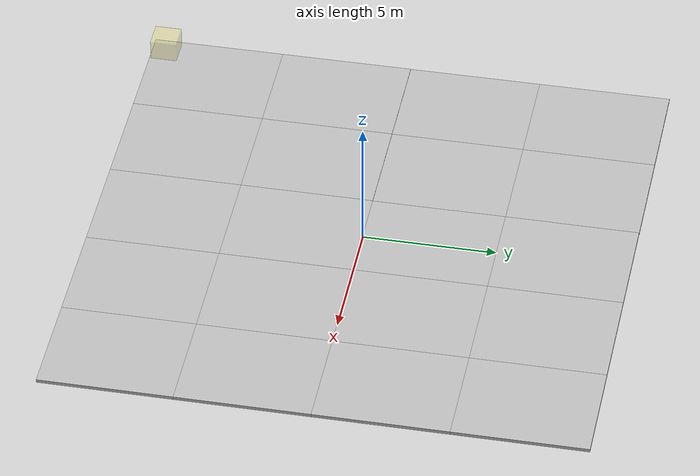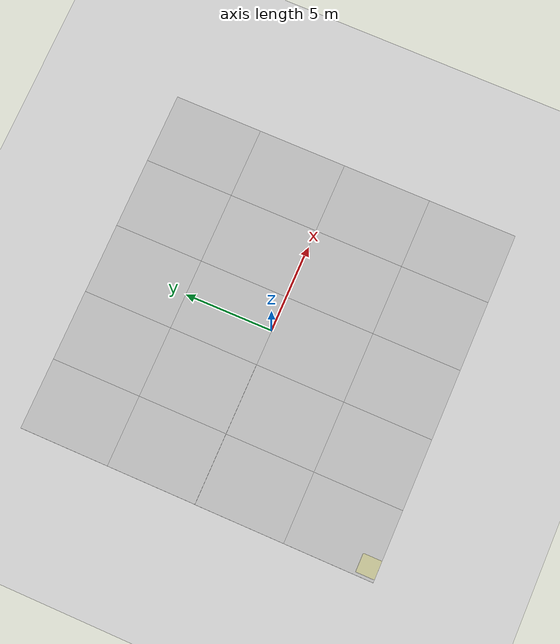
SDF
<sdf version="1.6">
 <world name="default">
  <physics name="default_physics" default="0" type="ode">
   <ode>
    <solver>
     <type>quick</type>
     <iters>100</iters>
     <sor>1</sor>
     <use_dynamic_moi_rescaling>0</use_dynamic_moi_rescaling>
    </solver>
    <constraints>
     <cfm>0</cfm>
     <erp>0.2</erp>
     <contact_max_correcting_vel>0.1</contact_max_correcting_vel>
     <contact_surface_layer>0</contact_surface_layer>
    </constraints>
   </ode>
   <real_time_update_rate>-1</real_time_update_rate>
   <max_step_size>0.001</max_step_size>
   <real_time_factor>1</real_time_factor>
  </physics>
  <gravity>0 0 -9.8</gravity>
  <light name="sun" type="directional">
   <pose>0 0 10 0 -0 0</pose>
   <diffuse>0.8 0.8 0.8 1</diffuse>
   <specular>0.2 0.2 0.2 1</specular>
   <attenuation>
    <range>1000</range>
    <constant>0.9</constant>
    <linear>0.01</linear>
    <quadratic>0.001</quadratic>
   </attenuation>
   <direction>-0.5 0.1 -0.9</direction>
  </light>
  <model name="ground_plane">
   <static>1</static>
   <link name="link">
    <collision name="collision">
     <geometry><plane><normal>0 0 1</normal><size>5000 5000</size></plane></geometry>
     <surface><friction><ode><mu>100</mu><mu2>50</mu2></ode></friction></surface>
    </collision>
    <visual name="runway">
     <pose>0 0 0.005 0 -0 0</pose>
     <cast_shadows>0</cast_shadows>
     <geometry><plane><normal>0 0 1</normal><size>1829 45</size></plane></geometry>
     <material>
      <script><uri>file://media/materials/scripts/gazebo.material</uri><name>Gazebo/Runway</name></script>
     </material>
    </visual>
    <visual name="grass">
     <pose>0 0 -0.1 0 -0 0</pose>
     <cast_shadows>0</cast_shadows>
     <geometry><plane><normal>0 0 1</normal><size>5000 5000</size></plane></geometry>
     <material>
      <script><uri>file://media/materials/scripts/gazebo.material</uri><name>Gazebo/Grass</name></script>
     </material>
    </visual>
   </link>
  </model>
  <magnetic_field>6e-06 2.3e-05 -4.2e-05</magnetic_field>
  <atmosphere type="adiabatic"/>
  <scene><ambient>0.4 0.4 0.4 1</ambient><background>0.7 0.7 0.7 1</background><shadows>1</shadows></scene>
  <audio><device>default</device></audio>
  <spherical_coordinates>
   <surface_model>EARTH_WGS84</surface_model>
   <latitude_deg>0</latitude_deg>
   <longitude_deg>0</longitude_deg>
   <elevation>0</elevation>
   <heading_deg>0</heading_deg>
  </spherical_coordinates>
  <model name="mud_box">
   <static>1</static>
   <link name="link">
    <collision name="collision"><geometry><box><size>8 10 0.2</size></box></geometry></collision>
    <visual name="visual_1">
     <pose>-2 2.5 0 0 -0 0</pose>
     <cast_shadows>0</cast_shadows>
     <geometry><box><size>4 5 0.2</size></box></geometry>
     <material>
      <script>
       <uri>model://mud_box/materials/scripts</uri>
       <uri>model://mud_box/materials/textures</uri>
       <name>vrc/mud</name>
      </script>
     </material>
    </visual>
    <visual name="visual_2">
     <pose>2 2.5 0 0 -0 0</pose>
     <cast_shadows>0</cast_shadows>
     <geometry><box><size>4 5 0.2</size></box></geometry>
     <material>
      <script>
       <uri>model://mud_box/materials/scripts</uri>
       <uri>model://mud_box/materials/textures</uri>
       <name>vrc/mud</name>
      </script>
     </material>
    </visual>
    <visual name="visual_3">
     <pose>2 -2.5 0 0 -0 0</pose>
     <cast_shadows>0</cast_shadows>
     <geometry><box><size>4 5 0.2</size></box></geometry>
     <material>
      <script>
       <uri>model://mud_box/materials/scripts</uri>
       <uri>model://mud_box/materials/textures</uri>
       <name>vrc/mud</name>
      </script>
     </material>
    </visual>
    <visual name="visual_4">
     <pose>-2 -2.5 0 0 -0 0</pose>
     <cast_shadows>0</cast_shadows>
     <geometry><box><size>4 5 0.2</size></box></geometry>
     <material>
      <script>
       <uri>model://mud_box/materials/scripts</uri>
       <uri>model://mud_box/materials/textures</uri>
       <name>vrc/mud</name>
      </script>
     </material>
    </visual>
   </link>
   <pose>-5.99115 5.00689 0 0 -0 0</pose>
  </model>
  <model name="mud_box_0">
   <static>1</static>
   <link name="link">
    <collision name="collision"><geometry><box><size>8 10 0.2</size></box></geometry></collision>
    <visual name="visual_1">
     <pose>-2 2.5 0 0 -0 0</pose>
     <cast_shadows>0</cast_shadows>
     <geometry><box><size>4 5 0.2</size></box></geometry>
     <material>
      <script>
       <uri>model://mud_box/materials/scripts</uri>
       <uri>model://mud_box/materials/textures</uri>
       <name>vrc/mud</name>
      </script>
     </material>
    </visual>
    <visual name="visual_2">
     <pose>2 2.5 0 0 -0 0</pose>
     <cast_shadows>0</cast_shadows>
     <geometry><box><size>4 5 0.2</size></box></geometry>
     <material>
      <script>
       <uri>model://mud_box/materials/scripts</uri>
       <uri>model://mud_box/materials/textures</uri>
       <name>vrc/mud</name>
      </script>
     </material>
    </visual>
    <visual name="visual_3">
     <pose>2 -2.5 0 0 -0 0</pose>
     <cast_shadows>0</cast_shadows>
     <geometry><box><size>4 5 0.2</size></box></geometry>
     <material>
      <script>
       <uri>model://mud_box/materials/scripts</uri>
       <uri>model://mud_box/materials/textures</uri>
       <name>vrc/mud</name>
      </script>
     </material>
    </visual>
    <visual name="visual_4">
     <pose>-2 -2.5 0 0 -0 0</pose>
     <cast_shadows>0</cast_shadows>
     <geometry><box><size>4 5 0.2</size></box></geometry>
     <material>
      <script>
       <uri>model://mud_box/materials/scripts</uri>
       <uri>model://mud_box/materials/textures</uri>
       <name>vrc/mud</name>
      </script>
     </material>
    </visual>
   </link>
   <pose>-6 -5 0 0 -0 0</pose>
  </model>
  <model name="mud_box_1">
   <static>1</static>
   <link name="link">
    <collision name="collision"><geometry><box><size>8 10 0.2</size></box></geometry></collision>
    <visual name="visual_1">
     <pose>-2 2.5 0 0 -0 0</pose>
     <cast_shadows>0</cast_shadows>
     <geometry><box><size>4 5 0.2</size></box></geometry>
     <material>
      <script>
       <uri>model://mud_box/materials/scripts</uri>
       <uri>model://mud_box/materials/textures</uri>
       <name>vrc/mud</name>
      </script>
     </material>
    </visual>
    <visual name="visual_2">
     <pose>2 2.5 0 0 -0 0</pose>
     <cast_shadows>0</cast_shadows>
     <geometry><box><size>4 5 0.2</size></box></geometry>
     <material>
      <script>
       <uri>model://mud_box/materials/scripts</uri>
       <uri>model://mud_box/materials/textures</uri>
       <name>vrc/mud</name>
      </script>
     </material>
    </visual>
    <visual name="visual_3">
     <pose>2 -2.5 0 0 -0 0</pose>
     <cast_shadows>0</cast_shadows>
     <geometry><box><size>4 5 0.2</size></box></geometry>
     <material>
      <script>
       <uri>model://mud_box/materials/scripts</uri>
       <uri>model://mud_box/materials/textures</uri>
       <name>vrc/mud</name>
      </script>
     </material>
    </visual>
    <visual name="visual_4">
     <pose>-2 -2.5 0 0 -0 0</pose>
     <cast_shadows>0</cast_shadows>
     <geometry><box><size>4 5 0.2</size></box></geometry>
     <material>
      <script>
       <uri>model://mud_box/materials/scripts</uri>
       <uri>model://mud_box/materials/textures</uri>
       <name>vrc/mud</name>
      </script>
     </material>
    </visual>
   </link>
   <pose>2 -5 0 0 -0 0</pose>
  </model>
  <model name="mud_box_2">
   <static>1</static>
   <link name="link">
    <collision name="collision"><geometry><box><size>8 10 0.2</size></box></geometry></collision>
    <visual name="visual_1">
     <pose>-2 2.5 0 0 -0 0</pose>
     <cast_shadows>0</cast_shadows>
     <geometry><box><size>4 5 0.2</size></box></geometry>
     <material>
      <script>
       <uri>model://mud_box/materials/scripts</uri>
       <uri>model://mud_box/materials/textures</uri>
       <name>vrc/mud</name>
      </script>
     </material>
    </visual>
    <visual name="visual_2">
     <pose>2 2.5 0 0 -0 0</pose>
     <cast_shadows>0</cast_shadows>
     <geometry><box><size>4 5 0.2</size></box></geometry>
     <material>
      <script>
       <uri>model://mud_box/materials/scripts</uri>
       <uri>model://mud_box/materials/textures</uri>
       <name>vrc/mud</name>
      </script>
     </material>
    </visual>
    <visual name="visual_3">
     <pose>2 -2.5 0 0 -0 0</pose>
     <cast_shadows>0</cast_shadows>
     <geometry><box><size>4 5 0.2</size></box></geometry>
     <material>
      <script>
       <uri>model://mud_box/materials/scripts</uri>
       <uri>model://mud_box/materials/textures</uri>
       <name>vrc/mud</name>
      </script>
     </material>
    </visual>
    <visual name="visual_4">
     <pose>-2 -2.5 0 0 -0 0</pose>
     <cast_shadows>0</cast_shadows>
     <geometry><box><size>4 5 0.2</size></box></geometry>
     <material>
      <script>
       <uri>model://mud_box/materials/scripts</uri>
       <uri>model://mud_box/materials/textures</uri>
       <name>vrc/mud</name>
      </script>
     </material>
    </visual>
   </link>
   <pose>2 5 0 0 -0 0</pose>
  </model>
  <model name="mud_box_3">
   <static>1</static>
   <link name="link">
    <collision name="collision"><geometry><box><size>8 10 0.2</size></box></geometry></collision>
    <visual name="visual_1">
     <pose>-2 2.5 0 0 -0 0</pose>
     <cast_shadows>0</cast_shadows>
     <geometry><box><size>4 5 0.2</size></box></geometry>
     <material>
      <script>
       <uri>model://mud_box/materials/scripts</uri>
       <uri>model://mud_box/materials/textures</uri>
       <name>vrc/mud</name>
      </script>
     </material>
    </visual>
    <visual name="visual_2">
     <pose>2 2.5 0 0 -0 0</pose>
     <cast_shadows>0</cast_shadows>
     <geometry><box><size>4 5 0.2</size></box></geometry>
     <material>
      <script>
       <uri>model://mud_box/materials/scripts</uri>
       <uri>model://mud_box/materials/textures</uri>
       <name>vrc/mud</name>
      </script>
     </material>
    </visual>
    <visual name="visual_3">
     <pose>2 -2.5 0 0 -0 0</pose>
     <cast_shadows>0</cast_shadows>
     <geometry><box><size>4 5 0.2</size></box></geometry>
     <material>
      <script>
       <uri>model://mud_box/materials/scripts</uri>
       <uri>model://mud_box/materials/textures</uri>
       <name>vrc/mud</name>
      </script>
     </material>
    </visual>
    <visual name="visual_4">
     <pose>-2 -2.5 0 0 -0 0</pose>
     <cast_shadows>0</cast_shadows>
     <geometry><box><size>4 5 0.2</size></box></geometry>
     <material>
      <script>
       <uri>model://mud_box/materials/scripts</uri>
       <uri>model://mud_box/materials/textures</uri>
       <name>vrc/mud</name>
      </script>
     </material>
    </visual>
   </link>
   <pose>6 -5 0 0 -0 0</pose>
  </model>
  <model name="mud_box_4">
   <static>1</static>
   <link name="link">
    <collision name="collision"><geometry><box><size>8 10 0.2</size></box></geometry></collision>
    <visual name="visual_1">
     <pose>-2 2.5 0 0 -0 0</pose>
     <cast_shadows>0</cast_shadows>
     <geometry><box><size>4 5 0.2</size></box></geometry>
     <material>
      <script>
       <uri>model://mud_box/materials/scripts</uri>
       <uri>model://mud_box/materials/textures</uri>
       <name>vrc/mud</name>
      </script>
     </material>
    </visual>
    <visual name="visual_2">
     <pose>2 2.5 0 0 -0 0</pose>
     <cast_shadows>0</cast_shadows>
     <geometry><box><size>4 5 0.2</size></box></geometry>
     <material>
      <script>
       <uri>model://mud_box/materials/scripts</uri>
       <uri>model://mud_box/materials/textures</uri>
       <name>vrc/mud</name>
      </script>
     </material>
    </visual>
    <visual name="visual_3">
     <pose>2 -2.5 0 0 -0 0</pose>
     <cast_shadows>0</cast_shadows>
     <geometry><box><size>4 5 0.2</size></box></geometry>
     <material>
      <script>
       <uri>model://mud_box/materials/scripts</uri>
       <uri>model://mud_box/materials/textures</uri>
       <name>vrc/mud</name>
      </script>
     </material>
    </visual>
    <visual name="visual_4">
     <pose>-2 -2.5 0 0 -0 0</pose>
     <cast_shadows>0</cast_shadows>
     <geometry><box><size>4 5 0.2</size></box></geometry>
     <material>
      <script>
       <uri>model://mud_box/materials/scripts</uri>
       <uri>model://mud_box/materials/textures</uri>
       <name>vrc/mud</name>
      </script>
     </material>
    </visual>
   </link>
   <pose>6 5 0 0 -0 0</pose>
  </model>
  <model name="RegionEventBox">
   <static>1</static>
   <pose>-9.3459 -9.44429 0 0 -0 0</pose>
   <link name="link">
    <visual name="visual">
     <transparency>0.75</transparency>
     <geometry><box><size>1 1 1.75</size></box></geometry>
     <material>
      <script><uri>file://media/materials/scripts/gazebo.material</uri><name>Gazebo/Yellow</name></script>
     </material>
    </visual>
   </link>
   <plugin name="region_event_box" filename="libRegionEventBoxPlugin.so">
    <event><name>model_in_region_event_box</name><type>inclusion</type><active>1</active></event>
   </plugin>
  </model>
 </world>
</sdf>
